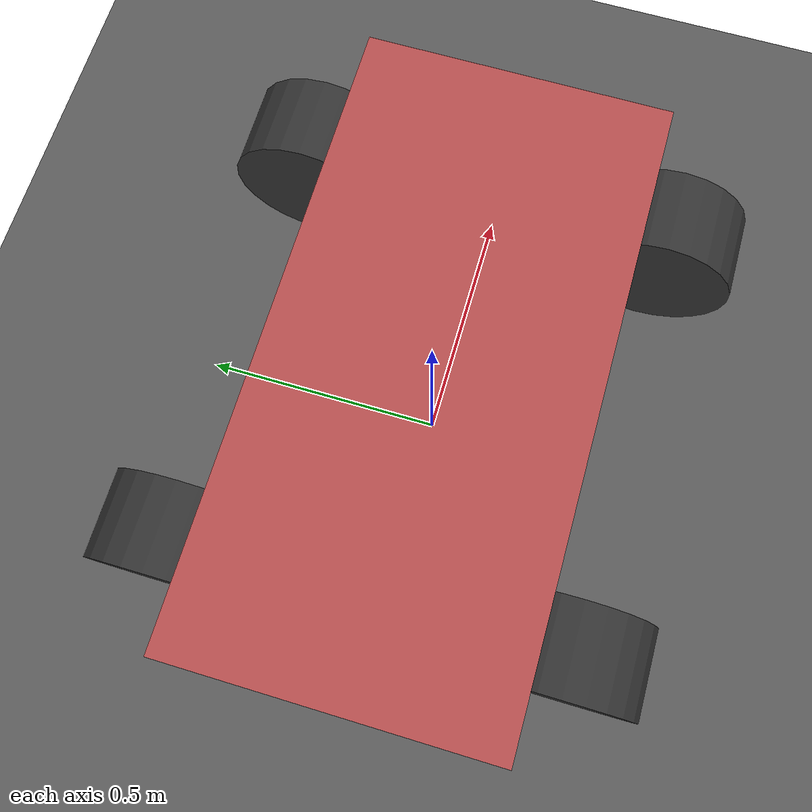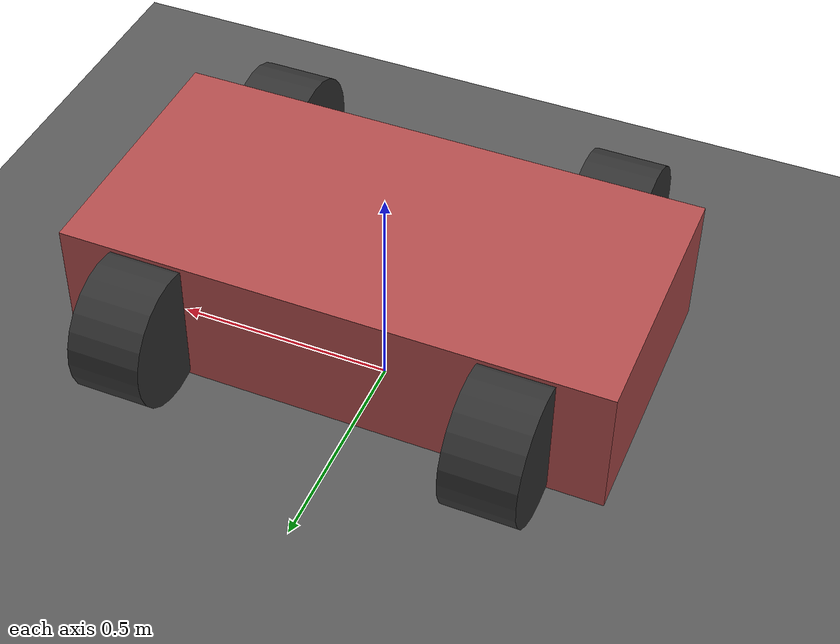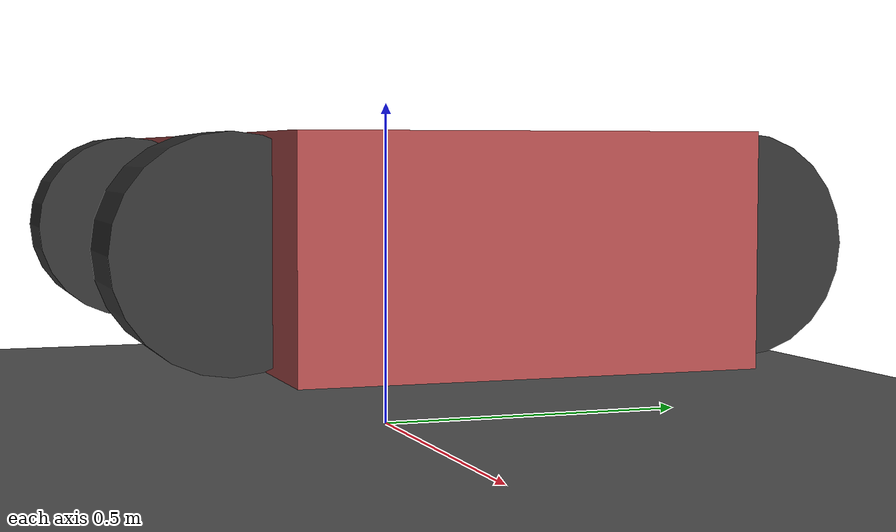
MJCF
<mujoco model="vehicle">
    <compiler inertiafromgeom="true"/>
    <option gravity="0 0 -9.81" integrator="RK4" timestep="0.01"/>
    <asset>
        <texture builtin="checker" height="512" name="ground" rgb1="0.3 0.3 0.3" rgb2="0.4 0.4 0.4" width="512"/>
        <material name="ground_mat" reflectance="0.1" texrepeat="20 20" texture="ground"/>
    </asset>
    <worldbody>
        <light diffuse="0.8 0.8 0.8" directional="true" pos="0 0 5"/>
        <geom friction="1 0.5 0.5" material="ground_mat" name="floor" size="20 20 0.1" type="plane"/>
        <body name="chassis" pos="0 0 0.3">
            <joint name="chassis_free" type="free"/>
            <geom name="chassis_geom" rgba="0.7 0.3 0.3 1" size="0.6 0.3 0.15" type="box"/>
            <body name="front_left" pos="0.4 0.35 0">
                <joint axis="0 1 0" damping="0.1" name="front_left_joint" type="hinge"/>
                <geom friction="1.5 0.5 0.5" name="front_left_geom" quat="0.707107 0 0.707107 0" rgba="0.2 0.2 0.2 1" size="0.15 0.08 0" type="cylinder"/>
            </body>
            <body name="front_right" pos="0.4 -0.35 0">
                <joint axis="0 1 0" damping="0.1" name="front_right_joint" type="hinge"/>
                <geom friction="1.5 0.5 0.5" name="front_right_geom" quat="0.707107 0 0.707107 0" rgba="0.2 0.2 0.2 1" size="0.15 0.08 0" type="cylinder"/>
            </body>
            <body name="rear_left" pos="-0.4 0.35 0">
                <joint axis="0 1 0" damping="0.1" name="rear_left_joint" type="hinge"/>
                <geom friction="1.5 0.5 0.5" name="rear_left_geom" quat="0.707107 0 0.707107 0" rgba="0.2 0.2 0.2 1" size="0.15 0.08 0" type="cylinder"/>
            </body>
            <body name="rear_right" pos="-0.4 -0.35 0">
                <joint axis="0 1 0" damping="0.1" name="rear_right_joint" type="hinge"/>
                <geom friction="1.5 0.5 0.5" name="rear_right_geom" quat="0.707107 0 0.707107 0" rgba="0.2 0.2 0.2 1" size="0.15 0.08 0" type="cylinder"/>
            </body>
        </body>
    </worldbody>
    <actuator>
        <motor ctrlrange="-1 1" gear="100 0 0 0 0 0" joint="front_left_joint" name="front_left_motor"/>
        <motor ctrlrange="-1 1" gear="100 0 0 0 0 0" joint="front_right_joint" name="front_right_motor"/>
        <motor ctrlrange="-1 1" gear="100 0 0 0 0 0" joint="rear_left_joint" name="rear_left_motor"/>
        <motor ctrlrange="-1 1" gear="100 0 0 0 0 0" joint="rear_right_joint" name="rear_right_motor"/>
    </actuator>
    <sensor/>
    <contact/>
    <equality/>
    <tendon/>
</mujoco>
